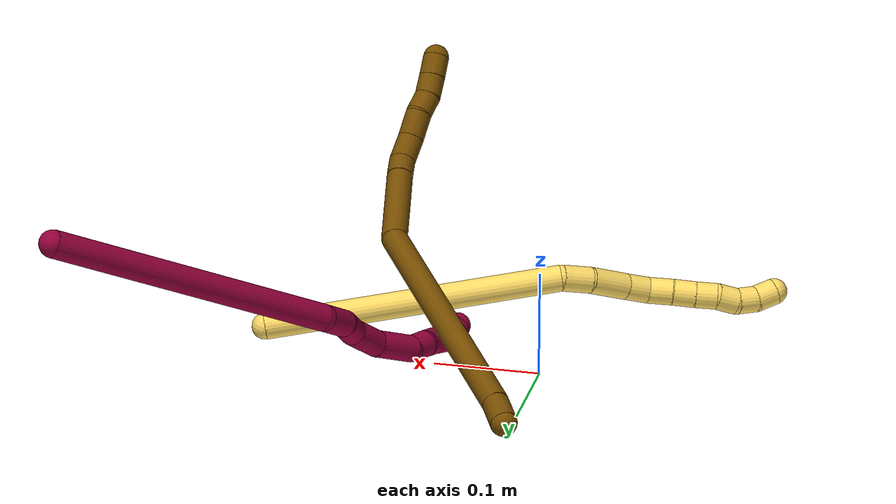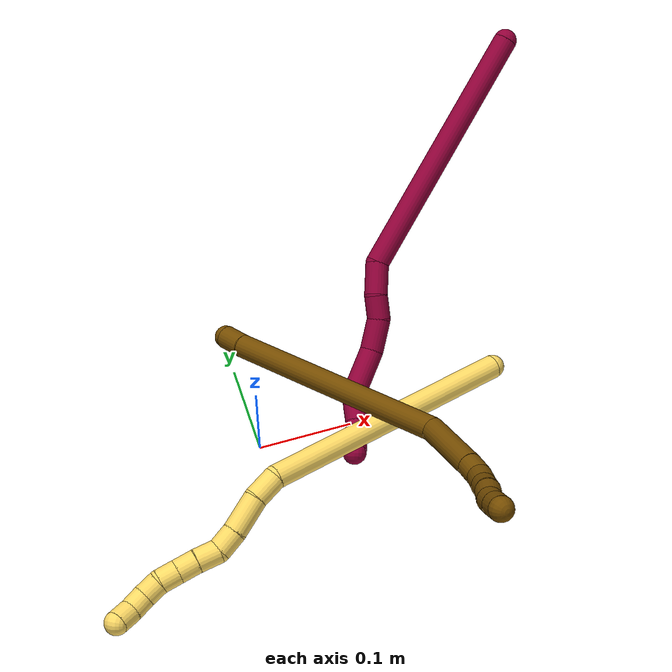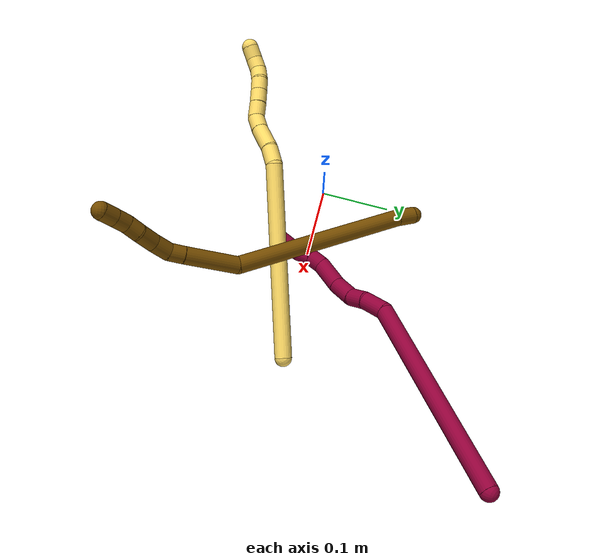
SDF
<sdf version="1.7">
 <world name="default">
  <model name="photoneo_s_sensor">
   <static>1</static>
   <pose>0 0 2 1.57079 1.57079 3.14159</pose>
   <link name="link">
    <inertial><mass>0.1</mass></inertial>
    <sensor name="sensor" type="depth">
     <update_rate>30</update_rate>
     <camera>
      <horizontal_fov>1.22</horizontal_fov>
      <image><width>1920</width><height>1200</height><format>B8G8R8</format></image>
      <clip><near>0.1</near><far>4</far></clip>
      <depth_camera><output>points</output></depth_camera>
     </camera>
     <plugin name="camera_plugin" filename="libgazebo_ros_depth_camera.so">
      <baseline>0.2</baseline>
      <alwaysOn>1</alwaysOn>
      <updateRate>0.0</updateRate>
      <cameraName>camera_ir</cameraName>
      <imageTopicName>/camera/color/image_raw</imageTopicName>
      <cameraInfoTopicName>/camera/color/camera_info</cameraInfoTopicName>
      <depthImageTopicName>/camera/depth/image_raw</depthImageTopicName>
      <depthImageCameraInfoTopicName>/camera/depth/camera_info</depthImageCameraInfoTopicName>
      <pointCloudTopicName>/camera/depth/points</pointCloudTopicName>
      <frameName>fr_optical</frameName>
      <pointCloudCutoff>0.1</pointCloudCutoff>
      <pointCloudCutoffMax>2.0</pointCloudCutoffMax>
      <distortionK1>0</distortionK1>
      <distortionK2>0</distortionK2>
      <distortionK3>0</distortionK3>
      <distortionT1>0</distortionT1>
      <distortionT2>0</distortionT2>
      <CxPrime>0</CxPrime>
      <Cx>0</Cx>
      <Cy>0</Cy>
      <focalLength>0</focalLength>
      <hackBaseline>0</hackBaseline>
     </plugin>
    </sensor>
   </link>
  </model>
  <model name="bin">
   <static>1</static>
   <link name="bottom">
    <collision name="collision-bottom">
     <pose>0 0 -0.01 0 -0 0</pose>
     <geometry><box><size>0.8 0.6 0.02</size></box></geometry>
     <surface>
      <friction><ode><mu>100</mu><mu2>100</mu2></ode></friction>
      <contact><collide_bitmask>65535</collide_bitmask></contact>
     </surface>
    </collision>
   </link>
   <link name="west_wall">
    <collision name="collision-west_wall">
     <pose>-0.41 0 0.1 0 -0 0</pose>
     <geometry><box><size>0.02 0.6 0.2</size></box></geometry>
     <surface>
      <friction><ode><mu>100</mu><mu2>100</mu2></ode></friction>
      <contact><collide_bitmask>65535</collide_bitmask></contact>
     </surface>
    </collision>
   </link>
   <link name="east_wall">
    <collision name="collision-east_wall">
     <pose>0.41 0 0.1 0 -0 0</pose>
     <geometry><box><size>0.02 0.6 0.2</size></box></geometry>
     <surface>
      <friction><ode><mu>100</mu><mu2>100</mu2></ode></friction>
      <contact><collide_bitmask>65535</collide_bitmask></contact>
     </surface>
    </collision>
   </link>
   <link name="south_wall">
    <collision name="collision-south_wall">
     <pose>0 -0.31 0.1 0 -0 0</pose>
     <geometry><box><size>0.8 0.02 0.2</size></box></geometry>
     <surface>
      <friction><ode><mu>100</mu><mu2>100</mu2></ode></friction>
      <contact><collide_bitmask>65535</collide_bitmask></contact>
     </surface>
    </collision>
   </link>
   <link name="north_wall">
    <collision name="collision-north_wall">
     <pose>0 0.31 0.1 0 -0 0</pose>
     <geometry><box><size>0.8 0.02 0.2</size></box></geometry>
     <surface>
      <friction><ode><mu>100</mu><mu2>100</mu2></ode></friction>
      <contact><collide_bitmask>65535</collide_bitmask></contact>
     </surface>
    </collision>
   </link>
  </model>
  <model name="5">
   <static>0</static>
   <link name="5">
    <collision name="collision-cylinder-e_1_1_4">
     <pose>-0.101873 -0.052992 -0.081603 2.56565 -0.808355 -1.93023</pose>
     <geometry><cylinder><radius>0.0125</radius><length>0.281747</length></cylinder></geometry>
     <surface>
      <friction><ode><mu>1.16</mu><mu2>1.16</mu2><slip1>0</slip1><slip2>0</slip2></ode></friction>
      <contact><ode><kp>1e+06</kp><kd>1</kd><max_vel>0</max_vel><min_depth>0.001</min_depth></ode></contact>
     </surface>
    </collision>
    <visual name="visual-cylinder-e_1_1_4">
     <pose>-0.101873 -0.052992 -0.081603 2.56565 -0.808355 -1.93023</pose>
     <geometry><cylinder><radius>0.0125</radius><length>0.281747</length></cylinder></geometry>
     <material><ambient>1 0.858824 0.4 1</ambient></material>
    </visual>
    <collision name="collision-cylinder-e_2_4_5">
     <pose>-0.211514 -0.116164 -0.169977 2.15766 -0.566065 -0.994442</pose>
     <geometry><cylinder><radius>0.0125</radius><length>0.028971</length></cylinder></geometry>
     <surface>
      <friction><ode><mu>1.16</mu><mu2>1.16</mu2><slip1>0</slip1><slip2>0</slip2></ode></friction>
      <contact><ode><kp>1e+06</kp><kd>1</kd><max_vel>0</max_vel><min_depth>0.001</min_depth></ode></contact>
     </surface>
    </collision>
    <visual name="visual-cylinder-e_2_4_5">
     <pose>-0.211514 -0.116164 -0.169977 2.15766 -0.566065 -0.994442</pose>
     <geometry><cylinder><radius>0.0125</radius><length>0.028971</length></cylinder></geometry>
     <material><ambient>1 0.858824 0.4 1</ambient></material>
    </visual>
    <collision name="collision-cylinder-e_3_5_6">
     <pose>-0.227794 -0.142745 -0.183492 1.96101 -0.447433 -0.65476</pose>
     <geometry><cylinder><radius>0.0125</radius><length>0.03934</length></cylinder></geometry>
     <surface>
      <friction><ode><mu>1.16</mu><mu2>1.16</mu2><slip1>0</slip1><slip2>0</slip2></ode></friction>
      <contact><ode><kp>1e+06</kp><kd>1</kd><max_vel>0</max_vel><min_depth>0.001</min_depth></ode></contact>
     </surface>
    </collision>
    <visual name="visual-cylinder-e_3_5_6">
     <pose>-0.227794 -0.142745 -0.183492 1.96101 -0.447433 -0.65476</pose>
     <geometry><cylinder><radius>0.0125</radius><length>0.03934</length></cylinder></geometry>
     <material><ambient>1 0.858824 0.4 1</ambient></material>
    </visual>
    <collision name="collision-cylinder-e_4_6_7">
     <pose>-0.24185 -0.168388 -0.195665 2.10174 -0.477543 -0.804093</pose>
     <geometry><cylinder><radius>0.0125</radius><length>0.024137</length></cylinder></geometry>
     <surface>
      <friction><ode><mu>1.16</mu><mu2>1.16</mu2><slip1>0</slip1><slip2>0</slip2></ode></friction>
      <contact><ode><kp>1e+06</kp><kd>1</kd><max_vel>0</max_vel><min_depth>0.001</min_depth></ode></contact>
     </surface>
    </collision>
    <visual name="visual-cylinder-e_4_6_7">
     <pose>-0.24185 -0.168388 -0.195665 2.10174 -0.477543 -0.804093</pose>
     <geometry><cylinder><radius>0.0125</radius><length>0.024137</length></cylinder></geometry>
     <material><ambient>1 0.858824 0.4 1</ambient></material>
    </visual>
    <collision name="collision-cylinder-e_5_7_8">
     <pose>-0.253851 -0.182782 -0.209939 2.61436 -0.562505 -1.63882</pose>
     <geometry><cylinder><radius>0.0125</radius><length>0.024202</length></cylinder></geometry>
     <surface>
      <friction><ode><mu>1.16</mu><mu2>1.16</mu2><slip1>0</slip1><slip2>0</slip2></ode></friction>
      <contact><ode><kp>1e+06</kp><kd>1</kd><max_vel>0</max_vel><min_depth>0.001</min_depth></ode></contact>
     </surface>
    </collision>
    <visual name="visual-cylinder-e_5_7_8">
     <pose>-0.253851 -0.182782 -0.209939 2.61436 -0.562505 -1.63882</pose>
     <geometry><cylinder><radius>0.0125</radius><length>0.024202</length></cylinder></geometry>
     <material><ambient>1 0.858824 0.4 1</ambient></material>
    </visual>
    <collision name="collision-cylinder-e_6_8_9">
     <pose>-0.26575 -0.193189 -0.226294 2.53075 -0.536125 -1.43334</pose>
     <geometry><cylinder><radius>0.0125</radius><length>0.021323</length></cylinder></geometry>
     <surface>
      <friction><ode><mu>1.16</mu><mu2>1.16</mu2><slip1>0</slip1><slip2>0</slip2></ode></friction>
      <contact><ode><kp>1e+06</kp><kd>1</kd><max_vel>0</max_vel><min_depth>0.001</min_depth></ode></contact>
     </surface>
    </collision>
    <visual name="visual-cylinder-e_6_8_9">
     <pose>-0.26575 -0.193189 -0.226294 2.53075 -0.536125 -1.43334</pose>
     <geometry><cylinder><radius>0.0125</radius><length>0.021323</length></cylinder></geometry>
     <material><ambient>1 0.858824 0.4 1</ambient></material>
    </visual>
    <collision name="collision-cylinder-e_7_9_10">
     <pose>-0.276645 -0.203352 -0.240753 2.52702 -0.56956 -1.49019</pose>
     <geometry><cylinder><radius>0.0125</radius><length>0.020207</length></cylinder></geometry>
     <surface>
      <friction><ode><mu>1.16</mu><mu2>1.16</mu2><slip1>0</slip1><slip2>0</slip2></ode></friction>
      <contact><ode><kp>1e+06</kp><kd>1</kd><max_vel>0</max_vel><min_depth>0.001</min_depth></ode></contact>
     </surface>
    </collision>
    <visual name="visual-cylinder-e_7_9_10">
     <pose>-0.276645 -0.203352 -0.240753 2.52702 -0.56956 -1.49019</pose>
     <geometry><cylinder><radius>0.0125</radius><length>0.020207</length></cylinder></geometry>
     <material><ambient>1 0.858824 0.4 1</ambient></material>
    </visual>
    <collision name="collision-cylinder-e_8_10_11">
     <pose>-0.286073 -0.215398 -0.253495 2.25217 -0.408615 -0.82027</pose>
     <geometry><cylinder><radius>0.0125</radius><length>0.020034</length></cylinder></geometry>
     <surface>
      <friction><ode><mu>1.16</mu><mu2>1.16</mu2><slip1>0</slip1><slip2>0</slip2></ode></friction>
      <contact><ode><kp>1e+06</kp><kd>1</kd><max_vel>0</max_vel><min_depth>0.001</min_depth></ode></contact>
     </surface>
    </collision>
    <visual name="visual-cylinder-e_8_10_11">
     <pose>-0.286073 -0.215398 -0.253495 2.25217 -0.408615 -0.82027</pose>
     <geometry><cylinder><radius>0.0125</radius><length>0.020034</length></cylinder></geometry>
     <material><ambient>1 0.858824 0.4 1</ambient></material>
    </visual>
    <collision name="collision-cylinder-e_9_11_12">
     <pose>-0.296779 -0.228874 -0.263109 2.1139 -0.73763 -1.20087</pose>
     <geometry><cylinder><radius>0.0125</radius><length>0.020001</length></cylinder></geometry>
     <surface>
      <friction><ode><mu>1.16</mu><mu2>1.16</mu2><slip1>0</slip1><slip2>0</slip2></ode></friction>
      <contact><ode><kp>1e+06</kp><kd>1</kd><max_vel>0</max_vel><min_depth>0.001</min_depth></ode></contact>
     </surface>
    </collision>
    <visual name="visual-cylinder-e_9_11_12">
     <pose>-0.296779 -0.228874 -0.263109 2.1139 -0.73763 -1.20087</pose>
     <geometry><cylinder><radius>0.0125</radius><length>0.020001</length></cylinder></geometry>
     <material><ambient>1 0.858824 0.4 1</ambient></material>
    </visual>
    <collision name="collision-cylinder-e_10_12_2">
     <pose>-0.312016 -0.239511 -0.270007 2.19117 -1.01503 -1.6484</pose>
     <geometry><cylinder><radius>0.0125</radius><length>0.020038</length></cylinder></geometry>
     <surface>
      <friction><ode><mu>1.16</mu><mu2>1.16</mu2><slip1>0</slip1><slip2>0</slip2></ode></friction>
      <contact><ode><kp>1e+06</kp><kd>1</kd><max_vel>0</max_vel><min_depth>0.001</min_depth></ode></contact>
     </surface>
    </collision>
    <visual name="visual-cylinder-e_10_12_2">
     <pose>-0.312016 -0.239511 -0.270007 2.19117 -1.01503 -1.6484</pose>
     <geometry><cylinder><radius>0.0125</radius><length>0.020038</length></cylinder></geometry>
     <material><ambient>1 0.858824 0.4 1</ambient></material>
    </visual>
    <collision name="collision-sphere-2">
     <pose>-0.320527 -0.243812 -0.27308 0 -0 0</pose>
     <geometry><sphere><radius>0.0125</radius></sphere></geometry>
     <surface>
      <friction><ode><mu>1.16</mu><mu2>1.16</mu2><slip1>0</slip1><slip2>0</slip2></ode></friction>
      <contact><ode><kp>1e+06</kp><kd>1</kd><max_vel>0</max_vel><min_depth>0.001</min_depth></ode></contact>
     </surface>
    </collision>
    <visual name="visual-sphere-2">
     <pose>-0.320527 -0.243812 -0.27308 0 -0 0</pose>
     <geometry><sphere><radius>0.0125</radius></sphere></geometry>
     <material><ambient>1 0.858824 0.4 1</ambient></material>
    </visual>
    <collision name="collision-sphere-12">
     <pose>-0.303505 -0.23521 -0.266934 0 -0 0</pose>
     <geometry><sphere><radius>0.0125</radius></sphere></geometry>
     <surface>
      <friction><ode><mu>1.16</mu><mu2>1.16</mu2><slip1>0</slip1><slip2>0</slip2></ode></friction>
      <contact><ode><kp>1e+06</kp><kd>1</kd><max_vel>0</max_vel><min_depth>0.001</min_depth></ode></contact>
     </surface>
    </collision>
    <visual name="visual-sphere-12">
     <pose>-0.303505 -0.23521 -0.266934 0 -0 0</pose>
     <geometry><sphere><radius>0.0125</radius></sphere></geometry>
     <material><ambient>1 0.858824 0.4 1</ambient></material>
    </visual>
    <collision name="collision-sphere-11">
     <pose>-0.290053 -0.222537 -0.259285 0 -0 0</pose>
     <geometry><sphere><radius>0.0125</radius></sphere></geometry>
     <surface>
      <friction><ode><mu>1.16</mu><mu2>1.16</mu2><slip1>0</slip1><slip2>0</slip2></ode></friction>
      <contact><ode><kp>1e+06</kp><kd>1</kd><max_vel>0</max_vel><min_depth>0.001</min_depth></ode></contact>
     </surface>
    </collision>
    <visual name="visual-sphere-11">
     <pose>-0.290053 -0.222537 -0.259285 0 -0 0</pose>
     <geometry><sphere><radius>0.0125</radius></sphere></geometry>
     <material><ambient>1 0.858824 0.4 1</ambient></material>
    </visual>
    <collision name="collision-sphere-10">
     <pose>-0.282093 -0.208258 -0.247705 0 -0 0</pose>
     <geometry><sphere><radius>0.0125</radius></sphere></geometry>
     <surface>
      <friction><ode><mu>1.16</mu><mu2>1.16</mu2><slip1>0</slip1><slip2>0</slip2></ode></friction>
      <contact><ode><kp>1e+06</kp><kd>1</kd><max_vel>0</max_vel><min_depth>0.001</min_depth></ode></contact>
     </surface>
    </collision>
    <visual name="visual-sphere-10">
     <pose>-0.282093 -0.208258 -0.247705 0 -0 0</pose>
     <geometry><sphere><radius>0.0125</radius></sphere></geometry>
     <material><ambient>1 0.858824 0.4 1</ambient></material>
    </visual>
    <collision name="collision-sphere-9">
     <pose>-0.271196 -0.198446 -0.233802 0 -0 0</pose>
     <geometry><sphere><radius>0.0125</radius></sphere></geometry>
     <surface>
      <friction><ode><mu>1.16</mu><mu2>1.16</mu2><slip1>0</slip1><slip2>0</slip2></ode></friction>
      <contact><ode><kp>1e+06</kp><kd>1</kd><max_vel>0</max_vel><min_depth>0.001</min_depth></ode></contact>
     </surface>
    </collision>
    <visual name="visual-sphere-9">
     <pose>-0.271196 -0.198446 -0.233802 0 -0 0</pose>
     <geometry><sphere><radius>0.0125</radius></sphere></geometry>
     <material><ambient>1 0.858824 0.4 1</ambient></material>
    </visual>
    <collision name="collision-sphere-4">
     <pose>-0.203746 -0.105984 -0.163206 0 -0 0</pose>
     <geometry><sphere><radius>0.0125</radius></sphere></geometry>
     <surface>
      <friction><ode><mu>1.16</mu><mu2>1.16</mu2><slip1>0</slip1><slip2>0</slip2></ode></friction>
      <contact><ode><kp>1e+06</kp><kd>1</kd><max_vel>0</max_vel><min_depth>0.001</min_depth></ode></contact>
     </surface>
    </collision>
    <visual name="visual-sphere-4">
     <pose>-0.203746 -0.105984 -0.163206 0 -0 0</pose>
     <geometry><sphere><radius>0.0125</radius></sphere></geometry>
     <material><ambient>1 0.858824 0.4 1</ambient></material>
    </visual>
    <collision name="collision-sphere-1">
     <geometry><sphere><radius>0.0125</radius></sphere></geometry>
     <surface>
      <friction><ode><mu>1.16</mu><mu2>1.16</mu2><slip1>0</slip1><slip2>0</slip2></ode></friction>
      <contact><ode><kp>1e+06</kp><kd>1</kd><max_vel>0</max_vel><min_depth>0.001</min_depth></ode></contact>
     </surface>
    </collision>
    <visual name="visual-sphere-1">
     <geometry><sphere><radius>0.0125</radius></sphere></geometry>
     <material><ambient>1 0.858824 0.4 1</ambient></material>
    </visual>
    <collision name="collision-sphere-8">
     <pose>-0.260304 -0.187932 -0.218786 0 -0 0</pose>
     <geometry><sphere><radius>0.0125</radius></sphere></geometry>
     <surface>
      <friction><ode><mu>1.16</mu><mu2>1.16</mu2><slip1>0</slip1><slip2>0</slip2></ode></friction>
      <contact><ode><kp>1e+06</kp><kd>1</kd><max_vel>0</max_vel><min_depth>0.001</min_depth></ode></contact>
     </surface>
    </collision>
    <visual name="visual-sphere-8">
     <pose>-0.260304 -0.187932 -0.218786 0 -0 0</pose>
     <geometry><sphere><radius>0.0125</radius></sphere></geometry>
     <material><ambient>1 0.858824 0.4 1</ambient></material>
    </visual>
    <collision name="collision-sphere-5">
     <pose>-0.219283 -0.126345 -0.176747 0 -0 0</pose>
     <geometry><sphere><radius>0.0125</radius></sphere></geometry>
     <surface>
      <friction><ode><mu>1.16</mu><mu2>1.16</mu2><slip1>0</slip1><slip2>0</slip2></ode></friction>
      <contact><ode><kp>1e+06</kp><kd>1</kd><max_vel>0</max_vel><min_depth>0.001</min_depth></ode></contact>
     </surface>
    </collision>
    <visual name="visual-sphere-5">
     <pose>-0.219283 -0.126345 -0.176747 0 -0 0</pose>
     <geometry><sphere><radius>0.0125</radius></sphere></geometry>
     <material><ambient>1 0.858824 0.4 1</ambient></material>
    </visual>
    <collision name="collision-sphere-6">
     <pose>-0.236304 -0.159146 -0.190238 0 -0 0</pose>
     <geometry><sphere><radius>0.0125</radius></sphere></geometry>
     <surface>
      <friction><ode><mu>1.16</mu><mu2>1.16</mu2><slip1>0</slip1><slip2>0</slip2></ode></friction>
      <contact><ode><kp>1e+06</kp><kd>1</kd><max_vel>0</max_vel><min_depth>0.001</min_depth></ode></contact>
     </surface>
    </collision>
    <visual name="visual-sphere-6">
     <pose>-0.236304 -0.159146 -0.190238 0 -0 0</pose>
     <geometry><sphere><radius>0.0125</radius></sphere></geometry>
     <material><ambient>1 0.858824 0.4 1</ambient></material>
    </visual>
    <collision name="collision-sphere-7">
     <pose>-0.247397 -0.177631 -0.201093 0 -0 0</pose>
     <geometry><sphere><radius>0.0125</radius></sphere></geometry>
     <surface>
      <friction><ode><mu>1.16</mu><mu2>1.16</mu2><slip1>0</slip1><slip2>0</slip2></ode></friction>
      <contact><ode><kp>1e+06</kp><kd>1</kd><max_vel>0</max_vel><min_depth>0.001</min_depth></ode></contact>
     </surface>
    </collision>
    <visual name="visual-sphere-7">
     <pose>-0.247397 -0.177631 -0.201093 0 -0 0</pose>
     <geometry><sphere><radius>0.0125</radius></sphere></geometry>
     <material><ambient>1 0.858824 0.4 1</ambient></material>
    </visual>
    <inertial>
     <pose>-0.169898 -0.10864 -0.14076 0 -0 0</pose>
     <mass>0.5</mass>
     <inertia><ixx>-0.001698</ixx><ixy>0</ixy><ixz>0</ixz><iyy>1e-06</iyy><iyz>0</iyz><izz>0.002065</izz></inertia>
    </inertial>
   </link>
   <pose>0.261776 0.007319 0.025379 1.2961 0.785801 0.786066</pose>
  </model>
  <model name="8">
   <static>0</static>
   <link name="8">
    <collision name="collision-cylinder-e_1_1_4">
     <pose>-0.063087 0.011899 -0.125282 -3.0469 -0.46469 2.74633</pose>
     <geometry><cylinder><radius>0.0125</radius><length>0.281547</length></cylinder></geometry>
     <surface>
      <friction><ode><mu>1.16</mu><mu2>1.16</mu2><slip1>0</slip1><slip2>0</slip2></ode></friction>
      <contact><ode><kp>1e+06</kp><kd>1</kd><max_vel>0</max_vel><min_depth>0.001</min_depth></ode></contact>
     </surface>
    </collision>
    <visual name="visual-cylinder-e_1_1_4">
     <pose>-0.063087 0.011899 -0.125282 -3.0469 -0.46469 2.74633</pose>
     <geometry><cylinder><radius>0.0125</radius><length>0.281547</length></cylinder></geometry>
     <material><ambient>0.584314 0 0.227451 1</ambient></material>
    </visual>
    <collision name="collision-cylinder-e_2_4_5">
     <pose>-0.126545 0.022314 -0.267822 3.05584 -0.021404 -0.48896</pose>
     <geometry><cylinder><radius>0.0125</radius><length>0.034651</length></cylinder></geometry>
     <surface>
      <friction><ode><mu>1.16</mu><mu2>1.16</mu2><slip1>0</slip1><slip2>0</slip2></ode></friction>
      <contact><ode><kp>1e+06</kp><kd>1</kd><max_vel>0</max_vel><min_depth>0.001</min_depth></ode></contact>
     </surface>
    </collision>
    <visual name="visual-cylinder-e_2_4_5">
     <pose>-0.126545 0.022314 -0.267822 3.05584 -0.021404 -0.48896</pose>
     <geometry><cylinder><radius>0.0125</radius><length>0.034651</length></cylinder></geometry>
     <material><ambient>0.584314 0 0.227451 1</ambient></material>
    </visual>
    <collision name="collision-cylinder-e_3_5_6">
     <pose>-0.124328 0.02153 -0.297542 -3.08555 0.2044 -2.608</pose>
     <geometry><cylinder><radius>0.0125</radius><length>0.025493</length></cylinder></geometry>
     <surface>
      <friction><ode><mu>1.16</mu><mu2>1.16</mu2><slip1>0</slip1><slip2>0</slip2></ode></friction>
      <contact><ode><kp>1e+06</kp><kd>1</kd><max_vel>0</max_vel><min_depth>0.001</min_depth></ode></contact>
     </surface>
    </collision>
    <visual name="visual-cylinder-e_3_5_6">
     <pose>-0.124328 0.02153 -0.297542 -3.08555 0.2044 -2.608</pose>
     <geometry><cylinder><radius>0.0125</radius><length>0.025493</length></cylinder></geometry>
     <material><ambient>0.584314 0 0.227451 1</ambient></material>
    </visual>
    <collision name="collision-cylinder-e_4_6_7">
     <pose>-0.12433 0.02393 -0.327251 -3.0433 -0.148285 1.9718</pose>
     <geometry><cylinder><radius>0.0125</radius><length>0.035048</length></cylinder></geometry>
     <surface>
      <friction><ode><mu>1.16</mu><mu2>1.16</mu2><slip1>0</slip1><slip2>0</slip2></ode></friction>
      <contact><ode><kp>1e+06</kp><kd>1</kd><max_vel>0</max_vel><min_depth>0.001</min_depth></ode></contact>
     </surface>
    </collision>
    <visual name="visual-cylinder-e_4_6_7">
     <pose>-0.12433 0.02393 -0.327251 -3.0433 -0.148285 1.9718</pose>
     <geometry><cylinder><radius>0.0125</radius><length>0.035048</length></cylinder></geometry>
     <material><ambient>0.584314 0 0.227451 1</ambient></material>
    </visual>
    <collision name="collision-cylinder-e_5_7_8">
     <pose>-0.134708 0.024558 -0.364308 3.08747 -0.374129 -2.85752</pose>
     <geometry><cylinder><radius>0.0125</radius><length>0.042624</length></cylinder></geometry>
     <surface>
      <friction><ode><mu>1.16</mu><mu2>1.16</mu2><slip1>0</slip1><slip2>0</slip2></ode></friction>
      <contact><ode><kp>1e+06</kp><kd>1</kd><max_vel>0</max_vel><min_depth>0.001</min_depth></ode></contact>
     </surface>
    </collision>
    <visual name="visual-cylinder-e_5_7_8">
     <pose>-0.134708 0.024558 -0.364308 3.08747 -0.374129 -2.85752</pose>
     <geometry><cylinder><radius>0.0125</radius><length>0.042624</length></cylinder></geometry>
     <material><ambient>0.584314 0 0.227451 1</ambient></material>
    </visual>
    <collision name="collision-cylinder-e_6_8_9">
     <pose>-0.144626 0.019101 -0.393171 2.69071 -0.208595 -0.856368</pose>
     <geometry><cylinder><radius>0.0125</radius><length>0.020563</length></cylinder></geometry>
     <surface>
      <friction><ode><mu>1.16</mu><mu2>1.16</mu2><slip1>0</slip1><slip2>0</slip2></ode></friction>
      <contact><ode><kp>1e+06</kp><kd>1</kd><max_vel>0</max_vel><min_depth>0.001</min_depth></ode></contact>
     </surface>
    </collision>
    <visual name="visual-cylinder-e_6_8_9">
     <pose>-0.144626 0.019101 -0.393171 2.69071 -0.208595 -0.856368</pose>
     <geometry><cylinder><radius>0.0125</radius><length>0.020563</length></cylinder></geometry>
     <material><ambient>0.584314 0 0.227451 1</ambient></material>
    </visual>
    <collision name="collision-cylinder-e_7_9_10">
     <pose>-0.146084 0.011139 -0.411542 2.77481 0.067188 0.358496</pose>
     <geometry><cylinder><radius>0.0125</radius><length>0.020009</length></cylinder></geometry>
     <surface>
      <friction><ode><mu>1.16</mu><mu2>1.16</mu2><slip1>0</slip1><slip2>0</slip2></ode></friction>
      <contact><ode><kp>1e+06</kp><kd>1</kd><max_vel>0</max_vel><min_depth>0.001</min_depth></ode></contact>
     </surface>
    </collision>
    <visual name="visual-cylinder-e_7_9_10">
     <pose>-0.146084 0.011139 -0.411542 2.77481 0.067188 0.358496</pose>
     <geometry><cylinder><radius>0.0125</radius><length>0.020009</length></cylinder></geometry>
     <material><ambient>0.584314 0 0.227451 1</ambient></material>
    </visual>
    <collision name="collision-cylinder-e_8_10_11">
     <pose>-0.14721 0.004355 -0.430165 2.80998 -0.180774 -0.99275</pose>
     <geometry><cylinder><radius>0.0125</radius><length>0.020007</length></cylinder></geometry>
     <surface>
      <friction><ode><mu>1.16</mu><mu2>1.16</mu2><slip1>0</slip1><slip2>0</slip2></ode></friction>
      <contact><ode><kp>1e+06</kp><kd>1</kd><max_vel>0</max_vel><min_depth>0.001</min_depth></ode></contact>
     </surface>
    </collision>
    <visual name="visual-cylinder-e_8_10_11">
     <pose>-0.14721 0.004355 -0.430165 2.80998 -0.180774 -0.99275</pose>
     <geometry><cylinder><radius>0.0125</radius><length>0.020007</length></cylinder></geometry>
     <material><ambient>0.584314 0 0.227451 1</ambient></material>
    </visual>
    <collision name="collision-cylinder-e_9_11_2">
     <pose>-0.151706 -0.006162 -0.445779 2.28271 -0.27228 -0.581325</pose>
     <geometry><cylinder><radius>0.0125</radius><length>0.020057</length></cylinder></geometry>
     <surface>
      <friction><ode><mu>1.16</mu><mu2>1.16</mu2><slip1>0</slip1><slip2>0</slip2></ode></friction>
      <contact><ode><kp>1e+06</kp><kd>1</kd><max_vel>0</max_vel><min_depth>0.001</min_depth></ode></contact>
     </surface>
    </collision>
    <visual name="visual-cylinder-e_9_11_2">
     <pose>-0.151706 -0.006162 -0.445779 2.28271 -0.27228 -0.581325</pose>
     <geometry><cylinder><radius>0.0125</radius><length>0.020057</length></cylinder></geometry>
     <material><ambient>0.584314 0 0.227451 1</ambient></material>
    </visual>
    <collision name="collision-sphere-2">
     <pose>-0.154403 -0.013475 -0.452089 0 -0 0</pose>
     <geometry><sphere><radius>0.0125</radius></sphere></geometry>
     <surface>
      <friction><ode><mu>1.16</mu><mu2>1.16</mu2><slip1>0</slip1><slip2>0</slip2></ode></friction>
      <contact><ode><kp>1e+06</kp><kd>1</kd><max_vel>0</max_vel><min_depth>0.001</min_depth></ode></contact>
     </surface>
    </collision>
    <visual name="visual-sphere-2">
     <pose>-0.154403 -0.013475 -0.452089 0 -0 0</pose>
     <geometry><sphere><radius>0.0125</radius></sphere></geometry>
     <material><ambient>0.584314 0 0.227451 1</ambient></material>
    </visual>
    <collision name="collision-sphere-11">
     <pose>-0.149009 0.001151 -0.439469 0 -0 0</pose>
     <geometry><sphere><radius>0.0125</radius></sphere></geometry>
     <surface>
      <friction><ode><mu>1.16</mu><mu2>1.16</mu2><slip1>0</slip1><slip2>0</slip2></ode></friction>
      <contact><ode><kp>1e+06</kp><kd>1</kd><max_vel>0</max_vel><min_depth>0.001</min_depth></ode></contact>
     </surface>
    </collision>
    <visual name="visual-sphere-11">
     <pose>-0.149009 0.001151 -0.439469 0 -0 0</pose>
     <geometry><sphere><radius>0.0125</radius></sphere></geometry>
     <material><ambient>0.584314 0 0.227451 1</ambient></material>
    </visual>
    <collision name="collision-sphere-10">
     <pose>-0.145412 0.007559 -0.42086 0 -0 0</pose>
     <geometry><sphere><radius>0.0125</radius></sphere></geometry>
     <surface>
      <friction><ode><mu>1.16</mu><mu2>1.16</mu2><slip1>0</slip1><slip2>0</slip2></ode></friction>
      <contact><ode><kp>1e+06</kp><kd>1</kd><max_vel>0</max_vel><min_depth>0.001</min_depth></ode></contact>
     </surface>
    </collision>
    <visual name="visual-sphere-10">
     <pose>-0.145412 0.007559 -0.42086 0 -0 0</pose>
     <geometry><sphere><radius>0.0125</radius></sphere></geometry>
     <material><ambient>0.584314 0 0.227451 1</ambient></material>
    </visual>
    <collision name="collision-sphere-9">
     <pose>-0.146755 0.014718 -0.402224 0 -0 0</pose>
     <geometry><sphere><radius>0.0125</radius></sphere></geometry>
     <surface>
      <friction><ode><mu>1.16</mu><mu2>1.16</mu2><slip1>0</slip1><slip2>0</slip2></ode></friction>
      <contact><ode><kp>1e+06</kp><kd>1</kd><max_vel>0</max_vel><min_depth>0.001</min_depth></ode></contact>
     </surface>
    </collision>
    <visual name="visual-sphere-9">
     <pose>-0.146755 0.014718 -0.402224 0 -0 0</pose>
     <geometry><sphere><radius>0.0125</radius></sphere></geometry>
     <material><ambient>0.584314 0 0.227451 1</ambient></material>
    </visual>
    <collision name="collision-sphere-4">
     <pose>-0.126174 0.023798 -0.250565 0 -0 0</pose>
     <geometry><sphere><radius>0.0125</radius></sphere></geometry>
     <surface>
      <friction><ode><mu>1.16</mu><mu2>1.16</mu2><slip1>0</slip1><slip2>0</slip2></ode></friction>
      <contact><ode><kp>1e+06</kp><kd>1</kd><max_vel>0</max_vel><min_depth>0.001</min_depth></ode></contact>
     </surface>
    </collision>
    <visual name="visual-sphere-4">
     <pose>-0.126174 0.023798 -0.250565 0 -0 0</pose>
     <geometry><sphere><radius>0.0125</radius></sphere></geometry>
     <material><ambient>0.584314 0 0.227451 1</ambient></material>
    </visual>
    <collision name="collision-sphere-1">
     <geometry><sphere><radius>0.0125</radius></sphere></geometry>
     <surface>
      <friction><ode><mu>1.16</mu><mu2>1.16</mu2><slip1>0</slip1><slip2>0</slip2></ode></friction>
      <contact><ode><kp>1e+06</kp><kd>1</kd><max_vel>0</max_vel><min_depth>0.001</min_depth></ode></contact>
     </surface>
    </collision>
    <visual name="visual-sphere-1">
     <geometry><sphere><radius>0.0125</radius></sphere></geometry>
     <material><ambient>0.584314 0 0.227451 1</ambient></material>
    </visual>
    <collision name="collision-sphere-8">
     <pose>-0.142497 0.023485 -0.384117 0 -0 0</pose>
     <geometry><sphere><radius>0.0125</radius></sphere></geometry>
     <surface>
      <friction><ode><mu>1.16</mu><mu2>1.16</mu2><slip1>0</slip1><slip2>0</slip2></ode></friction>
      <contact><ode><kp>1e+06</kp><kd>1</kd><max_vel>0</max_vel><min_depth>0.001</min_depth></ode></contact>
     </surface>
    </collision>
    <visual name="visual-sphere-8">
     <pose>-0.142497 0.023485 -0.384117 0 -0 0</pose>
     <geometry><sphere><radius>0.0125</radius></sphere></geometry>
     <material><ambient>0.584314 0 0.227451 1</ambient></material>
    </visual>
    <collision name="collision-sphere-5">
     <pose>-0.126916 0.020831 -0.28508 0 -0 0</pose>
     <geometry><sphere><radius>0.0125</radius></sphere></geometry>
     <surface>
      <friction><ode><mu>1.16</mu><mu2>1.16</mu2><slip1>0</slip1><slip2>0</slip2></ode></friction>
      <contact><ode><kp>1e+06</kp><kd>1</kd><max_vel>0</max_vel><min_depth>0.001</min_depth></ode></contact>
     </surface>
    </collision>
    <visual name="visual-sphere-5">
     <pose>-0.126916 0.020831 -0.28508 0 -0 0</pose>
     <geometry><sphere><radius>0.0125</radius></sphere></geometry>
     <material><ambient>0.584314 0 0.227451 1</ambient></material>
    </visual>
    <collision name="collision-sphere-6">
     <pose>-0.121741 0.022229 -0.310003 0 -0 0</pose>
     <geometry><sphere><radius>0.0125</radius></sphere></geometry>
     <surface>
      <friction><ode><mu>1.16</mu><mu2>1.16</mu2><slip1>0</slip1><slip2>0</slip2></ode></friction>
      <contact><ode><kp>1e+06</kp><kd>1</kd><max_vel>0</max_vel><min_depth>0.001</min_depth></ode></contact>
     </surface>
    </collision>
    <visual name="visual-sphere-6">
     <pose>-0.121741 0.022229 -0.310003 0 -0 0</pose>
     <geometry><sphere><radius>0.0125</radius></sphere></geometry>
     <material><ambient>0.584314 0 0.227451 1</ambient></material>
    </visual>
    <collision name="collision-sphere-7">
     <pose>-0.126919 0.025631 -0.3445 0 -0 0</pose>
     <geometry><sphere><radius>0.0125</radius></sphere></geometry>
     <surface>
      <friction><ode><mu>1.16</mu><mu2>1.16</mu2><slip1>0</slip1><slip2>0</slip2></ode></friction>
      <contact><ode><kp>1e+06</kp><kd>1</kd><max_vel>0</max_vel><min_depth>0.001</min_depth></ode></contact>
     </surface>
    </collision>
    <visual name="visual-sphere-7">
     <pose>-0.126919 0.025631 -0.3445 0 -0 0</pose>
     <geometry><sphere><radius>0.0125</radius></sphere></geometry>
     <material><ambient>0.584314 0 0.227451 1</ambient></material>
    </visual>
    <inertial>
     <pose>-0.094602 0.014274 -0.226006 0 -0 0</pose>
     <mass>0.5</mass>
     <inertia>
      <ixx>-0.000918</ixx>
      <ixy>0</ixy>
      <ixz>0</ixz>
      <iyy>0.002393</iyy>
      <iyz>0</iyz>
      <izz>0.000652</izz>
     </inertia>
    </inertial>
   </link>
   <pose>0.369208 0.29101 0.2088 -0.963124 0.309352 -0.160359</pose>
  </model>
  <model name="12">
   <static>0</static>
   <link name="12">
    <collision name="collision-cylinder-e_1_1_4">
     <pose>0.003824 -0.002287 0.012751 0.177467 0.286999 0.025709</pose>
     <geometry><cylinder><radius>0.0125</radius><length>0.027015</length></cylinder></geometry>
     <surface>
      <friction><ode><mu>1.16</mu><mu2>1.16</mu2><slip1>0</slip1><slip2>0</slip2></ode></friction>
      <contact><ode><kp>1e+06</kp><kd>1</kd><max_vel>0</max_vel><min_depth>0.001</min_depth></ode></contact>
     </surface>
    </collision>
    <visual name="visual-cylinder-e_1_1_4">
     <pose>0.003824 -0.002287 0.012751 0.177467 0.286999 0.025709</pose>
     <geometry><cylinder><radius>0.0125</radius><length>0.027015</length></cylinder></geometry>
     <material><ambient>0.466667 0.301961 0 1</ambient></material>
    </visual>
    <collision name="collision-cylinder-e_2_4_5">
     <pose>0.057534 -0.024293 0.142238 0.167337 0.398804 0.033893</pose>
     <geometry><cylinder><radius>0.0125</radius><length>0.25694</length></cylinder></geometry>
     <surface>
      <friction><ode><mu>1.16</mu><mu2>1.16</mu2><slip1>0</slip1><slip2>0</slip2></ode></friction>
      <contact><ode><kp>1e+06</kp><kd>1</kd><max_vel>0</max_vel><min_depth>0.001</min_depth></ode></contact>
     </surface>
    </collision>
    <visual name="visual-cylinder-e_2_4_5">
     <pose>0.057534 -0.024293 0.142238 0.167337 0.398804 0.033893</pose>
     <geometry><cylinder><radius>0.0125</radius><length>0.25694</length></cylinder></geometry>
     <material><ambient>0.466667 0.301961 0 1</ambient></material>
    </visual>
    <collision name="collision-cylinder-e_3_5_6">
     <pose>0.104859 -0.050405 0.298273 0.161274 -0.064268 -0.005195</pose>
     <geometry><cylinder><radius>0.0125</radius><length>0.079799</length></cylinder></geometry>
     <surface>
      <friction><ode><mu>1.16</mu><mu2>1.16</mu2><slip1>0</slip1><slip2>0</slip2></ode></friction>
      <contact><ode><kp>1e+06</kp><kd>1</kd><max_vel>0</max_vel><min_depth>0.001</min_depth></ode></contact>
     </surface>
    </collision>
    <visual name="visual-cylinder-e_3_5_6">
     <pose>0.104859 -0.050405 0.298273 0.161274 -0.064268 -0.005195</pose>
     <geometry><cylinder><radius>0.0125</radius><length>0.079799</length></cylinder></geometry>
     <material><ambient>0.466667 0.301961 0 1</ambient></material>
    </visual>
    <collision name="collision-cylinder-e_4_6_7">
     <pose>0.101369 -0.059155 0.347868 0.225084 -0.087553 -0.009901</pose>
     <geometry><cylinder><radius>0.0125</radius><length>0.021203</length></cylinder></geometry>
     <surface>
      <friction><ode><mu>1.16</mu><mu2>1.16</mu2><slip1>0</slip1><slip2>0</slip2></ode></friction>
      <contact><ode><kp>1e+06</kp><kd>1</kd><max_vel>0</max_vel><min_depth>0.001</min_depth></ode></contact>
     </surface>
    </collision>
    <visual name="visual-cylinder-e_4_6_7">
     <pose>0.101369 -0.059155 0.347868 0.225084 -0.087553 -0.009901</pose>
     <geometry><cylinder><radius>0.0125</radius><length>0.021203</length></cylinder></geometry>
     <material><ambient>0.466667 0.301961 0 1</ambient></material>
    </visual>
    <collision name="collision-cylinder-e_5_7_8">
     <pose>0.095342 -0.061571 0.370058 0.004937 -0.405049 -0.001014</pose>
     <geometry><cylinder><radius>0.0125</radius><length>0.025886</length></cylinder></geometry>
     <surface>
      <friction><ode><mu>1.16</mu><mu2>1.16</mu2><slip1>0</slip1><slip2>0</slip2></ode></friction>
      <contact><ode><kp>1e+06</kp><kd>1</kd><max_vel>0</max_vel><min_depth>0.001</min_depth></ode></contact>
     </surface>
    </collision>
    <visual name="visual-cylinder-e_5_7_8">
     <pose>0.095342 -0.061571 0.370058 0.004937 -0.405049 -0.001014</pose>
     <geometry><cylinder><radius>0.0125</radius><length>0.025886</length></cylinder></geometry>
     <material><ambient>0.466667 0.301961 0 1</ambient></material>
    </visual>
    <collision name="collision-cylinder-e_6_8_9">
     <pose>0.084465 -0.059526 0.39392 -0.174047 -0.443821 0.039364</pose>
     <geometry><cylinder><radius>0.0125</radius><length>0.026907</length></cylinder></geometry>
     <surface>
      <friction><ode><mu>1.16</mu><mu2>1.16</mu2><slip1>0</slip1><slip2>0</slip2></ode></friction>
      <contact><ode><kp>1e+06</kp><kd>1</kd><max_vel>0</max_vel><min_depth>0.001</min_depth></ode></contact>
     </surface>
    </collision>
    <visual name="visual-cylinder-e_6_8_9">
     <pose>0.084465 -0.059526 0.39392 -0.174047 -0.443821 0.039364</pose>
     <geometry><cylinder><radius>0.0125</radius><length>0.026907</length></cylinder></geometry>
     <material><ambient>0.466667 0.301961 0 1</ambient></material>
    </visual>
    <collision name="collision-cylinder-e_7_9_10">
     <pose>0.073884 -0.058114 0.414837 0.077195 -0.491351 -0.019365</pose>
     <geometry><cylinder><radius>0.0125</radius><length>0.020365</length></cylinder></geometry>
     <surface>
      <friction><ode><mu>1.16</mu><mu2>1.16</mu2><slip1>0</slip1><slip2>0</slip2></ode></friction>
      <contact><ode><kp>1e+06</kp><kd>1</kd><max_vel>0</max_vel><min_depth>0.001</min_depth></ode></contact>
     </surface>
    </collision>
    <visual name="visual-cylinder-e_7_9_10">
     <pose>0.073884 -0.058114 0.414837 0.077195 -0.491351 -0.019365</pose>
     <geometry><cylinder><radius>0.0125</radius><length>0.020365</length></cylinder></geometry>
     <material><ambient>0.466667 0.301961 0 1</ambient></material>
    </visual>
    <collision name="collision-cylinder-e_8_10_11">
     <pose>0.065652 -0.057474 0.433306 -0.139092 -0.342571 0.024098</pose>
     <geometry><cylinder><radius>0.0125</radius><length>0.020406</length></cylinder></geometry>
     <surface>
      <friction><ode><mu>1.16</mu><mu2>1.16</mu2><slip1>0</slip1><slip2>0</slip2></ode></friction>
      <contact><ode><kp>1e+06</kp><kd>1</kd><max_vel>0</max_vel><min_depth>0.001</min_depth></ode></contact>
     </surface>
    </collision>
    <visual name="visual-cylinder-e_8_10_11">
     <pose>0.065652 -0.057474 0.433306 -0.139092 -0.342571 0.024098</pose>
     <geometry><cylinder><radius>0.0125</radius><length>0.020406</length></cylinder></geometry>
     <material><ambient>0.466667 0.301961 0 1</ambient></material>
    </visual>
    <collision name="collision-cylinder-e_9_11_2">
     <pose>0.058835 -0.054556 0.45289 -0.156283 -0.321088 0.025358</pose>
     <geometry><cylinder><radius>0.0125</radius><length>0.02148</length></cylinder></geometry>
     <surface>
      <friction><ode><mu>1.16</mu><mu2>1.16</mu2><slip1>0</slip1><slip2>0</slip2></ode></friction>
      <contact><ode><kp>1e+06</kp><kd>1</kd><max_vel>0</max_vel><min_depth>0.001</min_depth></ode></contact>
     </surface>
    </collision>
    <visual name="visual-cylinder-e_9_11_2">
     <pose>0.058835 -0.054556 0.45289 -0.156283 -0.321088 0.025358</pose>
     <geometry><cylinder><radius>0.0125</radius><length>0.02148</length></cylinder></geometry>
     <material><ambient>0.466667 0.301961 0 1</ambient></material>
    </visual>
    <collision name="collision-sphere-2">
     <pose>0.055446 -0.052969 0.462956 0 -0 0</pose>
     <geometry><sphere><radius>0.0125</radius></sphere></geometry>
     <surface>
      <friction><ode><mu>1.16</mu><mu2>1.16</mu2><slip1>0</slip1><slip2>0</slip2></ode></friction>
      <contact><ode><kp>1e+06</kp><kd>1</kd><max_vel>0</max_vel><min_depth>0.001</min_depth></ode></contact>
     </surface>
    </collision>
    <visual name="visual-sphere-2">
     <pose>0.055446 -0.052969 0.462956 0 -0 0</pose>
     <geometry><sphere><radius>0.0125</radius></sphere></geometry>
     <material><ambient>0.466667 0.301961 0 1</ambient></material>
    </visual>
    <collision name="collision-sphere-11">
     <pose>0.062225 -0.056142 0.442823 0 -0 0</pose>
     <geometry><sphere><radius>0.0125</radius></sphere></geometry>
     <surface>
      <friction><ode><mu>1.16</mu><mu2>1.16</mu2><slip1>0</slip1><slip2>0</slip2></ode></friction>
      <contact><ode><kp>1e+06</kp><kd>1</kd><max_vel>0</max_vel><min_depth>0.001</min_depth></ode></contact>
     </surface>
    </collision>
    <visual name="visual-sphere-11">
     <pose>0.062225 -0.056142 0.442823 0 -0 0</pose>
     <geometry><sphere><radius>0.0125</radius></sphere></geometry>
     <material><ambient>0.466667 0.301961 0 1</ambient></material>
    </visual>
    <collision name="collision-sphere-10">
     <pose>0.06908 -0.058807 0.423788 0 -0 0</pose>
     <geometry><sphere><radius>0.0125</radius></sphere></geometry>
     <surface>
      <friction><ode><mu>1.16</mu><mu2>1.16</mu2><slip1>0</slip1><slip2>0</slip2></ode></friction>
      <contact><ode><kp>1e+06</kp><kd>1</kd><max_vel>0</max_vel><min_depth>0.001</min_depth></ode></contact>
     </surface>
    </collision>
    <visual name="visual-sphere-10">
     <pose>0.06908 -0.058807 0.423788 0 -0 0</pose>
     <geometry><sphere><radius>0.0125</radius></sphere></geometry>
     <material><ambient>0.466667 0.301961 0 1</ambient></material>
    </visual>
    <collision name="collision-sphere-9">
     <pose>0.078688 -0.057422 0.405886 0 -0 0</pose>
     <geometry><sphere><radius>0.0125</radius></sphere></geometry>
     <surface>
      <friction><ode><mu>1.16</mu><mu2>1.16</mu2><slip1>0</slip1><slip2>0</slip2></ode></friction>
      <contact><ode><kp>1e+06</kp><kd>1</kd><max_vel>0</max_vel><min_depth>0.001</min_depth></ode></contact>
     </surface>
    </collision>
    <visual name="visual-sphere-9">
     <pose>0.078688 -0.057422 0.405886 0 -0 0</pose>
     <geometry><sphere><radius>0.0125</radius></sphere></geometry>
     <material><ambient>0.466667 0.301961 0 1</ambient></material>
    </visual>
    <collision name="collision-sphere-4">
     <pose>0.007647 -0.004574 0.025503 0 -0 0</pose>
     <geometry><sphere><radius>0.0125</radius></sphere></geometry>
     <surface>
      <friction><ode><mu>1.16</mu><mu2>1.16</mu2><slip1>0</slip1><slip2>0</slip2></ode></friction>
      <contact><ode><kp>1e+06</kp><kd>1</kd><max_vel>0</max_vel><min_depth>0.001</min_depth></ode></contact>
     </surface>
    </collision>
    <visual name="visual-sphere-4">
     <pose>0.007647 -0.004574 0.025503 0 -0 0</pose>
     <geometry><sphere><radius>0.0125</radius></sphere></geometry>
     <material><ambient>0.466667 0.301961 0 1</ambient></material>
    </visual>
    <collision name="collision-sphere-1">
     <geometry><sphere><radius>0.0125</radius></sphere></geometry>
     <surface>
      <friction><ode><mu>1.16</mu><mu2>1.16</mu2><slip1>0</slip1><slip2>0</slip2></ode></friction>
      <contact><ode><kp>1e+06</kp><kd>1</kd><max_vel>0</max_vel><min_depth>0.001</min_depth></ode></contact>
     </surface>
    </collision>
    <visual name="visual-sphere-1">
     <geometry><sphere><radius>0.0125</radius></sphere></geometry>
     <material><ambient>0.466667 0.301961 0 1</ambient></material>
    </visual>
    <collision name="collision-sphere-8">
     <pose>0.090242 -0.06163 0.381953 0 -0 0</pose>
     <geometry><sphere><radius>0.0125</radius></sphere></geometry>
     <surface>
      <friction><ode><mu>1.16</mu><mu2>1.16</mu2><slip1>0</slip1><slip2>0</slip2></ode></friction>
      <contact><ode><kp>1e+06</kp><kd>1</kd><max_vel>0</max_vel><min_depth>0.001</min_depth></ode></contact>
     </surface>
    </collision>
    <visual name="visual-sphere-8">
     <pose>0.090242 -0.06163 0.381953 0 -0 0</pose>
     <geometry><sphere><radius>0.0125</radius></sphere></geometry>
     <material><ambient>0.466667 0.301961 0 1</ambient></material>
    </visual>
    <collision name="collision-sphere-5">
     <pose>0.107421 -0.044011 0.258972 0 -0 0</pose>
     <geometry><sphere><radius>0.0125</radius></sphere></geometry>
     <surface>
      <friction><ode><mu>1.16</mu><mu2>1.16</mu2><slip1>0</slip1><slip2>0</slip2></ode></friction>
      <contact><ode><kp>1e+06</kp><kd>1</kd><max_vel>0</max_vel><min_depth>0.001</min_depth></ode></contact>
     </surface>
    </collision>
    <visual name="visual-sphere-5">
     <pose>0.107421 -0.044011 0.258972 0 -0 0</pose>
     <geometry><sphere><radius>0.0125</radius></sphere></geometry>
     <material><ambient>0.466667 0.301961 0 1</ambient></material>
    </visual>
    <collision name="collision-sphere-6">
     <pose>0.102296 -0.056798 0.337573 0 -0 0</pose>
     <geometry><sphere><radius>0.0125</radius></sphere></geometry>
     <surface>
      <friction><ode><mu>1.16</mu><mu2>1.16</mu2><slip1>0</slip1><slip2>0</slip2></ode></friction>
      <contact><ode><kp>1e+06</kp><kd>1</kd><max_vel>0</max_vel><min_depth>0.001</min_depth></ode></contact>
     </surface>
    </collision>
    <visual name="visual-sphere-6">
     <pose>0.102296 -0.056798 0.337573 0 -0 0</pose>
     <geometry><sphere><radius>0.0125</radius></sphere></geometry>
     <material><ambient>0.466667 0.301961 0 1</ambient></material>
    </visual>
    <collision name="collision-sphere-7">
     <pose>0.100442 -0.061513 0.358162 0 -0 0</pose>
     <geometry><sphere><radius>0.0125</radius></sphere></geometry>
     <surface>
      <friction><ode><mu>1.16</mu><mu2>1.16</mu2><slip1>0</slip1><slip2>0</slip2></ode></friction>
      <contact><ode><kp>1e+06</kp><kd>1</kd><max_vel>0</max_vel><min_depth>0.001</min_depth></ode></contact>
     </surface>
    </collision>
    <visual name="visual-sphere-7">
     <pose>0.100442 -0.061513 0.358162 0 -0 0</pose>
     <geometry><sphere><radius>0.0125</radius></sphere></geometry>
     <material><ambient>0.466667 0.301961 0 1</ambient></material>
    </visual>
    <inertial>
     <pose>0.068504 -0.036607 0.23053 0 -0 0</pose>
     <mass>0.5</mass>
     <inertia>
      <ixx>0.001418</ixx>
      <ixy>0</ixy>
      <ixz>0</ixz>
      <iyy>0.001505</iyy>
      <iyz>0</iyz>
      <izz>-0.000285</izz>
     </inertia>
    </inertial>
   </link>
   <pose>0.002616 0.14024 0.011905 0.938155 0.333517 0.072523</pose>
  </model>
 </world>
</sdf>
